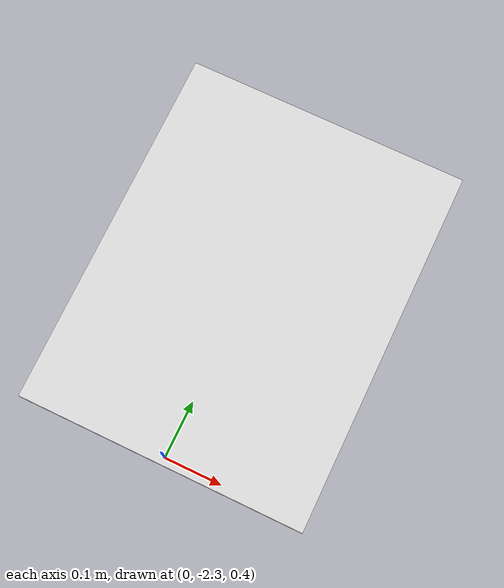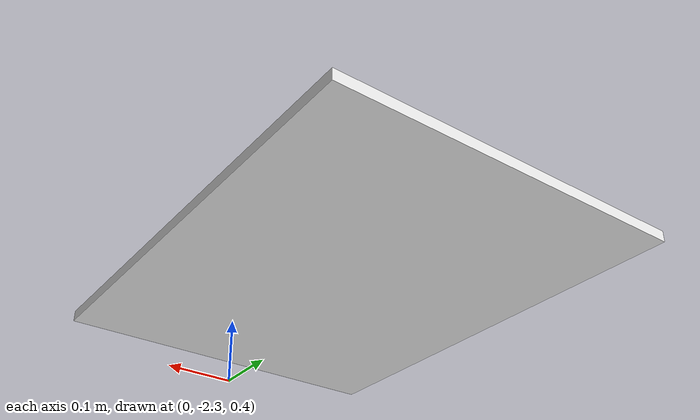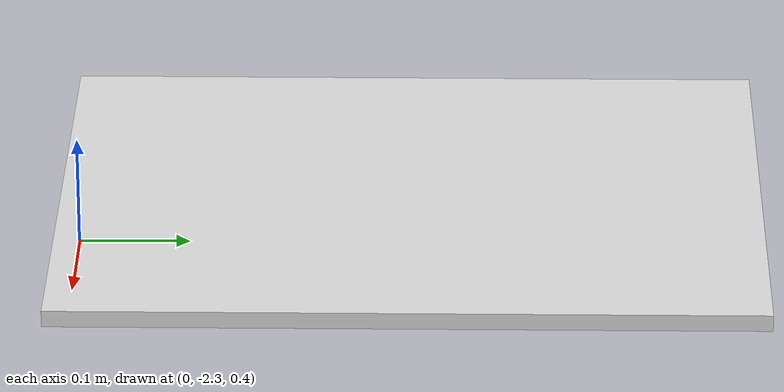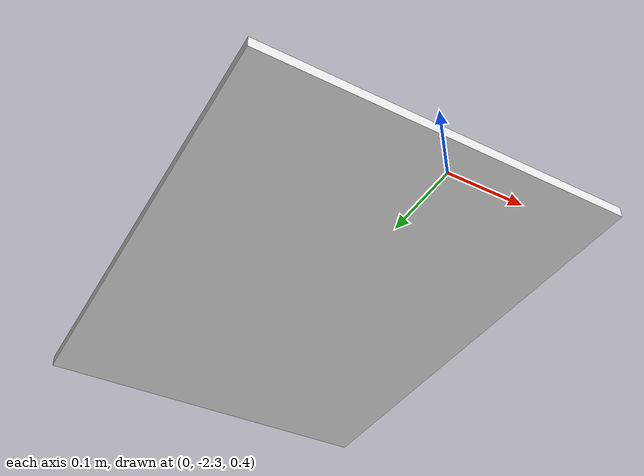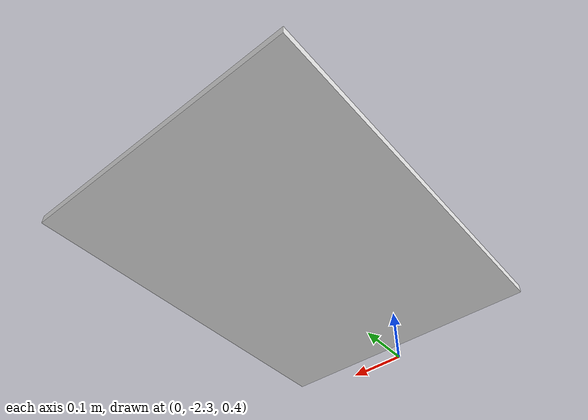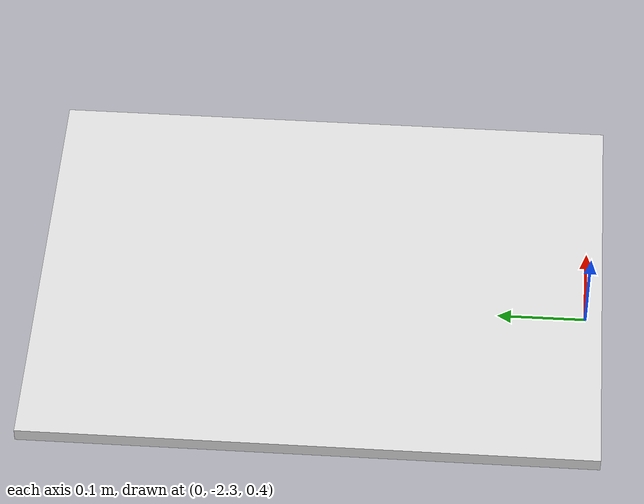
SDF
<?xml version="1.0"?>
<sdf version="1.7">

  <model name="table_top3">
    <link name="table_top3_link">
      <inertial>
        <mass>18.70</mass>
        <inertia>
          <ixx>0.79</ixx>
          <ixy>0</ixy>
          <ixz>0</ixz>
          <iyy>0.53</iyy>
          <iyz>0</iyz>
          <izz>1.2</izz>
        </inertia>
      </inertial>
    <visual name="bottom">
        <pose>0.0 -2.0 0.445 0 0 0</pose>
        <geometry>
          <box>
            <size>0.49 0.63 0.015</size>
          </box>
        </geometry>
        <material>
          <diffuse>0.9 0.9 0.9 1.0</diffuse>
        </material>
      </visual>
      <collision name="bottom">
        <pose>0.0 -2.0 0.445 0 0 0</pose>
        <geometry>
          <box>
            <size>0.49 0.63 0.015</size>
          </box>
        </geometry>
        <drake:proximity_properties>
          <drake:compliant_hydroelastic/>
          <drake:hydroelastic_modulus>1.0e6</drake:hydroelastic_modulus>
        </drake:proximity_properties>
      </collision>
    </link>
    <frame name="table_top3_center">
      <pose relative_to="table_top3_link">0 0 0.47 0 0 0</pose>
    </frame>
  </model>
</sdf>
